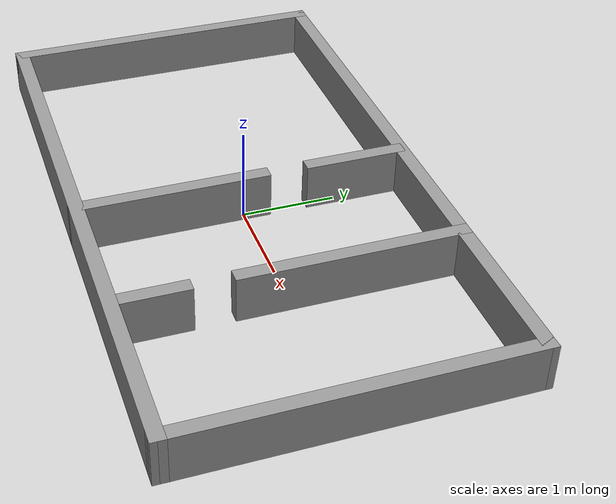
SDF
<?xml version='1.0'?>
<sdf version='1.7'>
  <model name='short_passage'>
    <pose>8.1e-05 0 0 0 -0 0</pose>
    <link name='Wall_0'>
      <collision name='Wall_0_Collision'>
        <geometry>
          <box>
            <size>3.65 0.15 0.5</size>
          </box>
        </geometry>
        <pose>0 0 0.25 0 -0 0</pose>
      </collision>
      <visual name='Wall_0_Visual'>
        <pose>0 0 0.25 0 -0 0</pose>
        <geometry>
          <box>
            <size>3.65 0.15 0.5</size>
          </box>
        </geometry>
        <material>
          <script>
            <uri>file://media/materials/scripts/gazebo.material</uri>
            <name>Gazebo/Grey</name>
          </script>
          <ambient>1 1 1 1</ambient>
        </material>
        <meta>
          <layer>0</layer>
        </meta>
      </visual>
      <pose>-3.20008 0 0 0 -0 -1.5708</pose>
    </link>
    <link name='Wall_1'>
      <collision name='Wall_1_Collision'>
        <geometry>
          <box>
            <size>6.55002 0.15 0.5</size>
          </box>
        </geometry>
        <pose>0 0 0.25 0 -0 0</pose>
      </collision>
      <visual name='Wall_1_Visual'>
        <pose>0 0 0.25 0 -0 0</pose>
        <geometry>
          <box>
            <size>6.55002 0.15 0.5</size>
          </box>
        </geometry>
        <material>
          <script>
            <uri>file://media/materials/scripts/gazebo.material</uri>
            <name>Gazebo/Grey</name>
          </script>
          <ambient>1 1 1 1</ambient>
        </material>
        <meta>
          <layer>0</layer>
        </meta>
      </visual>
      <pose>-8.1e-05 -1.75 0 0 -0 0</pose>
    </link>
    <link name='Wall_10'>
      <collision name='Wall_10_Collision'>
        <geometry>
          <box>
            <size>1.1 0.15 0.5</size>
          </box>
        </geometry>
        <pose>0 0 0.25 0 -0 0</pose>
      </collision>
      <visual name='Wall_10_Visual'>
        <pose>0 0 0.25 0 -0 0</pose>
        <geometry>
          <box>
            <size>1.1 0.15 0.5</size>
          </box>
        </geometry>
        <material>
          <script>
            <uri>file://media/materials/scripts/gazebo.material</uri>
            <name>Gazebo/Grey</name>
          </script>
          <ambient>1 1 1 1</ambient>
        </material>
        <meta>
          <layer>0</layer>
        </meta>
      </visual>
      <pose>-8.1e-05 1.225 0 0 -0 -1.5708</pose>
    </link>
    <link name='Wall_12'>
      <collision name='Wall_12_Collision'>
        <geometry>
          <box>
            <size>2.4 0.15 0.5</size>
          </box>
        </geometry>
        <pose>0 0 0.25 0 -0 0</pose>
      </collision>
      <visual name='Wall_12_Visual'>
        <pose>0 0 0.25 0 -0 0</pose>
        <geometry>
          <box>
            <size>2.4 0.15 0.5</size>
          </box>
        </geometry>
        <material>
          <script>
            <uri>file://media/materials/scripts/gazebo.material</uri>
            <name>Gazebo/Grey</name>
          </script>
          <ambient>1 1 1 1</ambient>
        </material>
        <meta>
          <layer>0</layer>
        </meta>
      </visual>
      <pose>1.49992 0.625 0 0 -0 -1.5708</pose>
    </link>
    <link name='Wall_14'>
      <collision name='Wall_14_Collision'>
        <geometry>
          <box>
            <size>0.8 0.15 0.5</size>
          </box>
        </geometry>
        <pose>0 0 0.25 0 -0 0</pose>
      </collision>
      <visual name='Wall_14_Visual'>
        <pose>0 0 0.25 0 -0 0</pose>
        <geometry>
          <box>
            <size>0.8 0.15 0.5</size>
          </box>
        </geometry>
        <material>
          <script>
            <uri>file://media/materials/scripts/gazebo.material</uri>
            <name>Gazebo/Grey</name>
          </script>
          <ambient>1 1 1 1</ambient>
        </material>
        <meta>
          <layer>0</layer>
        </meta>
      </visual>
      <pose>1.49992 -1.375 0 0 -0 1.5708</pose>
    </link>
    <link name='Wall_2'>
      <collision name='Wall_2_Collision'>
        <geometry>
          <box>
            <size>3.65001 0.15 0.5</size>
          </box>
        </geometry>
        <pose>0 0 0.25 0 -0 0</pose>
      </collision>
      <visual name='Wall_2_Visual'>
        <pose>0 0 0.25 0 -0 0</pose>
        <geometry>
          <box>
            <size>3.65001 0.15 0.5</size>
          </box>
        </geometry>
        <material>
          <script>
            <uri>file://media/materials/scripts/gazebo.material</uri>
            <name>Gazebo/Grey</name>
          </script>
          <ambient>1 1 1 1</ambient>
        </material>
        <meta>
          <layer>0</layer>
        </meta>
      </visual>
      <pose>3.19592 0 0 0 -0 1.57308</pose>
    </link>
    <link name='Wall_3'>
      <collision name='Wall_3_Collision'>
        <geometry>
          <box>
            <size>6.542 0.15 0.5</size>
          </box>
        </geometry>
        <pose>0 0 0.25 0 -0 0</pose>
      </collision>
      <visual name='Wall_3_Visual'>
        <pose>0 0 0.25 0 -0 0</pose>
        <geometry>
          <box>
            <size>6.542 0.15 0.5</size>
          </box>
        </geometry>
        <material>
          <script>
            <uri>file://media/materials/scripts/gazebo.material</uri>
            <name>Gazebo/Grey</name>
          </script>
          <ambient>1 1 1 1</ambient>
        </material>
        <meta>
          <layer>0</layer>
        </meta>
      </visual>
      <pose>-0.004081 1.75 0 0 -0 3.14159</pose>
    </link>
    <link name='Wall_5'>
      <collision name='Wall_5_Collision'>
        <geometry>
          <box>
            <size>2.1 0.15 0.5</size>
          </box>
        </geometry>
        <pose>0 0 0.25 0 -0 0</pose>
      </collision>
      <visual name='Wall_5_Visual'>
        <pose>0 0 0.25 0 -0 0</pose>
        <geometry>
          <box>
            <size>2.1 0.15 0.5</size>
          </box>
        </geometry>
        <material>
          <script>
            <uri>file://media/materials/scripts/gazebo.material</uri>
            <name>Gazebo/Grey</name>
          </script>
          <ambient>1 1 1 1</ambient>
        </material>
        <meta>
          <layer>0</layer>
        </meta>
      </visual>
      <pose>-8.1e-05 -0.775 0 0 -0 1.5708</pose>
    </link>
    <static>1</static>
  </model>
</sdf>
